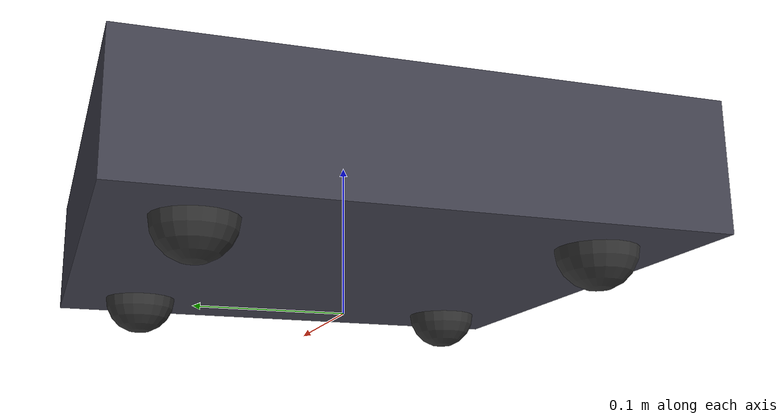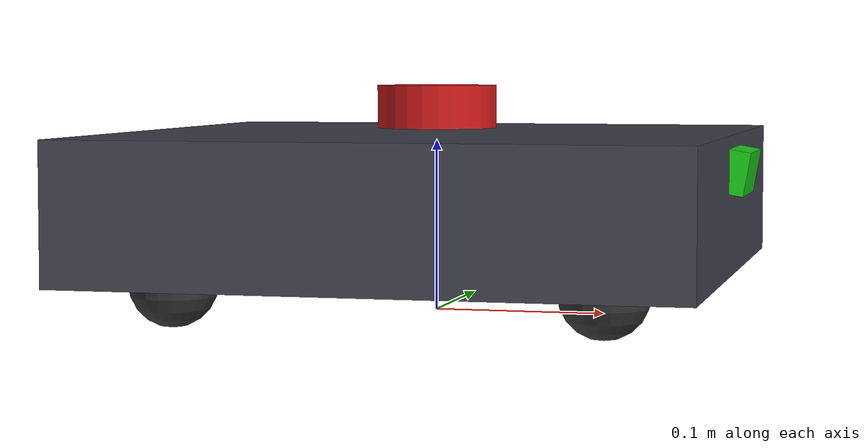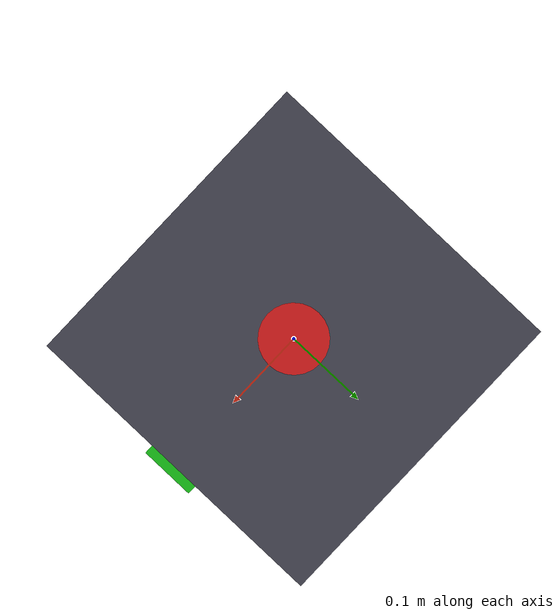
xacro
<?xml version="1.0"?>
<robot xmlns:xacro="http://www.ros.org/wiki/xacro" name="collector_bot">

  <!-- ═══════════════════ ARGUMENTS ═══════════════════ -->
  <xacro:arg name="robot_ns" default="robot_1"/>
  <xacro:property name="ns" value="$(arg robot_ns)"/>

  <!-- ═══════════════════ DIMENSIONS ═══════════════════ -->
  <xacro:property name="chassis_x" value="0.35"/>
  <xacro:property name="chassis_y" value="0.35"/>
  <xacro:property name="chassis_h" value="0.08"/>
  <xacro:property name="chassis_m" value="3.0"/>
  <xacro:property name="chassis_z" value="0.065"/>

  <xacro:property name="caster_r" value="0.025"/>
  <xacro:property name="caster_m" value="0.05"/>
  <xacro:property name="caster_xy" value="0.12"/>

  <!-- ═══════════════════ MATERIALS ═══════════════════ -->
  <material name="body">  <color rgba="0.25 0.25 0.30 1"/></material>
  <material name="accent"><color rgba="0.1 0.6 0.9 1"/></material>
  <material name="dark">  <color rgba="0.2 0.2 0.2 1"/></material>
  <material name="red">   <color rgba="0.8 0.1 0.1 1"/></material>
  <material name="green"> <color rgba="0.1 0.8 0.1 1"/></material>

  <!-- ═══════════════════ INERTIA MACROS ═══════════════════ -->
  <xacro:macro name="box_inertia" params="m x y z">
    <inertial><mass value="${m}"/>
      <inertia ixx="${m/12*(y*y+z*z)}" ixy="0" ixz="0"
               iyy="${m/12*(x*x+z*z)}" iyz="0"
               izz="${m/12*(x*x+y*y)}"/>
    </inertial>
  </xacro:macro>

  <xacro:macro name="sphere_inertia" params="m r">
    <inertial><mass value="${m}"/>
      <inertia ixx="${2*m*r*r/5}" ixy="0" ixz="0"
               iyy="${2*m*r*r/5}" iyz="0"
               izz="${2*m*r*r/5}"/>
    </inertial>
  </xacro:macro>

  <xacro:macro name="cyl_inertia" params="m r h">
    <inertial><mass value="${m}"/>
      <inertia ixx="${m/12*(3*r*r+h*h)}" ixy="0" ixz="0"
               iyy="${m/12*(3*r*r+h*h)}" iyz="0"
               izz="${m*r*r/2}"/>
    </inertial>
  </xacro:macro>

  <!-- ═══════════════════ BASE ═══════════════════ -->
  <link name="base_footprint"/>

  <joint name="base_joint" type="fixed">
    <parent link="base_footprint"/>
    <child link="base_link"/>
    <origin xyz="0 0 ${chassis_z}" rpy="0 0 0"/>
  </joint>

  <link name="base_link">
    <visual>
      <geometry><box size="${chassis_x} ${chassis_y} ${chassis_h}"/></geometry>
      <material name="body"/>
    </visual>
    <collision>
      <geometry><box size="${chassis_x} ${chassis_y} ${chassis_h}"/></geometry>
    </collision>
    <xacro:box_inertia m="${chassis_m}" x="${chassis_x}" y="${chassis_y}" z="${chassis_h}"/>
  </link>
  <gazebo reference="base_link"><material>Gazebo/DarkGrey</material></gazebo>

  <!-- ═══════════════════ 4 × CASTERS ═══════════════════ -->
  <xacro:macro name="caster" params="name cx cy">
    <link name="${name}">
      <visual><geometry><sphere radius="${caster_r}"/></geometry><material name="dark"/></visual>
      <collision><geometry><sphere radius="${caster_r}"/></geometry></collision>
      <xacro:sphere_inertia m="${caster_m}" r="${caster_r}"/>
    </link>
    <joint name="${name}_joint" type="fixed">
      <parent link="base_link"/>
      <child link="${name}"/>
      <origin xyz="${cx} ${cy} ${-(chassis_z - caster_r)}" rpy="0 0 0"/>
    </joint>
    <gazebo reference="${name}">
      <material>Gazebo/DarkGrey</material>
      <mu1>0.0</mu1><mu2>0.0</mu2>
    </gazebo>
  </xacro:macro>

  <xacro:caster name="caster_fl" cx="${ caster_xy}" cy="${ caster_xy}"/>
  <xacro:caster name="caster_fr" cx="${ caster_xy}" cy="${-caster_xy}"/>
  <xacro:caster name="caster_rl" cx="${-caster_xy}" cy="${ caster_xy}"/>
  <xacro:caster name="caster_rr" cx="${-caster_xy}" cy="${-caster_xy}"/>

  <!-- ═══════════════════ LIDAR ═══════════════════ -->
  <link name="lidar_link">
    <visual><geometry><cylinder radius="0.035" length="0.025"/></geometry>
      <material name="red"/></visual>
    <collision><geometry><cylinder radius="0.035" length="0.025"/></geometry></collision>
    <xacro:cyl_inertia m="0.05" r="0.035" h="0.025"/>
  </link>
  <joint name="lidar_joint" type="fixed">
    <parent link="base_link"/>
    <child link="lidar_link"/>
    <origin xyz="0 0 ${chassis_h/2 + 0.015}" rpy="0 0 0"/>
  </joint>

  <gazebo reference="lidar_link">
    <material>Gazebo/Red</material>
    <sensor type="ray" name="lidar">
      <pose>0 0 0 0 0 0</pose>
      <visualize>false</visualize>
      <update_rate>10</update_rate>
      <ray>
        <scan><horizontal>
          <samples>360</samples><resolution>1</resolution>
          <min_angle>-3.14159</min_angle><max_angle>3.14159</max_angle>
        </horizontal></scan>
        <range><min>0.12</min><max>5.0</max><resolution>0.01</resolution></range>
        <noise><type>gaussian</type><mean>0</mean><stddev>0.008</stddev></noise>
      </ray>
      <plugin name="lidar_plugin" filename="libgazebo_ros_ray_sensor.so">
        <ros><namespace>${ns}</namespace>
          <remapping>~/out:=scan</remapping></ros>
        <output_type>sensor_msgs/LaserScan</output_type>
        <frame_name>${ns}/lidar_link</frame_name>
      </plugin>
    </sensor>
  </gazebo>

  <!-- ═══════════════════ CAMERA ═══════════════════ -->
  <link name="camera_link">
    <visual><geometry><box size="0.02 0.06 0.025"/></geometry>
      <material name="green"/></visual>
    <collision><geometry><box size="0.02 0.06 0.025"/></geometry></collision>
    <xacro:box_inertia m="0.03" x="0.02" y="0.06" z="0.025"/>
  </link>
  <joint name="camera_joint" type="fixed">
    <parent link="base_link"/>
    <child link="camera_link"/>
    <origin xyz="${chassis_x/2} 0 ${chassis_h/4}" rpy="0 0.18 0"/>
  </joint>

  <link name="camera_optical_link"/>
  <joint name="camera_optical_joint" type="fixed">
    <parent link="camera_link"/>
    <child link="camera_optical_link"/>
    <origin xyz="0 0 0" rpy="${-pi/2} 0 ${-pi/2}"/>
  </joint>

  <gazebo reference="camera_link">
    <material>Gazebo/Green</material>
    <sensor type="camera" name="rgb_camera">
      <update_rate>10</update_rate>
      <camera name="camera">
        <horizontal_fov>1.2</horizontal_fov>
        <image><width>640</width><height>480</height><format>R8G8B8</format></image>
        <clip><near>0.05</near><far>8.0</far></clip>
        <noise><type>gaussian</type><mean>0</mean><stddev>0.005</stddev></noise>
      </camera>
      <plugin name="camera_plugin" filename="libgazebo_ros_camera.so">
        <ros><namespace>${ns}</namespace></ros>
        <camera_name>camera</camera_name>
        <frame_name>${ns}/camera_optical_link</frame_name>
      </plugin>
    </sensor>
  </gazebo>

  <!-- ═══════════════════ IMU ═══════════════════ -->
  <link name="imu_link">
    <visual><geometry><box size="0.02 0.02 0.01"/></geometry>
      <material name="accent"/></visual>
    <xacro:box_inertia m="0.01" x="0.02" y="0.02" z="0.01"/>
  </link>
  <joint name="imu_joint" type="fixed">
    <parent link="base_link"/>
    <child link="imu_link"/>
    <origin xyz="0 0 0" rpy="0 0 0"/>
  </joint>

  <gazebo reference="imu_link">
    <sensor type="imu" name="imu_sensor">
      <update_rate>50</update_rate>
      <plugin name="imu_plugin" filename="libgazebo_ros_imu_sensor.so">
        <ros><namespace>${ns}</namespace>
          <remapping>~/out:=imu</remapping></ros>
        <frame_name>${ns}/imu_link</frame_name>
        <initial_orientation_as_reference>false</initial_orientation_as_reference>
      </plugin>
    </sensor>
  </gazebo>

  <!-- ═══════════════════ PLANAR MOVE (omni-drive) ═══════════════════ -->
  <gazebo>
    <plugin name="planar_move" filename="libgazebo_ros_planar_move.so">
      <ros><namespace>${ns}</namespace></ros>
      <command_topic>cmd_vel</command_topic>
      <odometry_topic>odom</odometry_topic>
      <odometry_frame>${ns}/odom</odometry_frame>
      <robot_base_frame>${ns}/base_footprint</robot_base_frame>
      <odometry_rate>30.0</odometry_rate>
      <publish_odom>true</publish_odom>
      <publish_odom_tf>true</publish_odom_tf>
    </plugin>
  </gazebo>

</robot>
